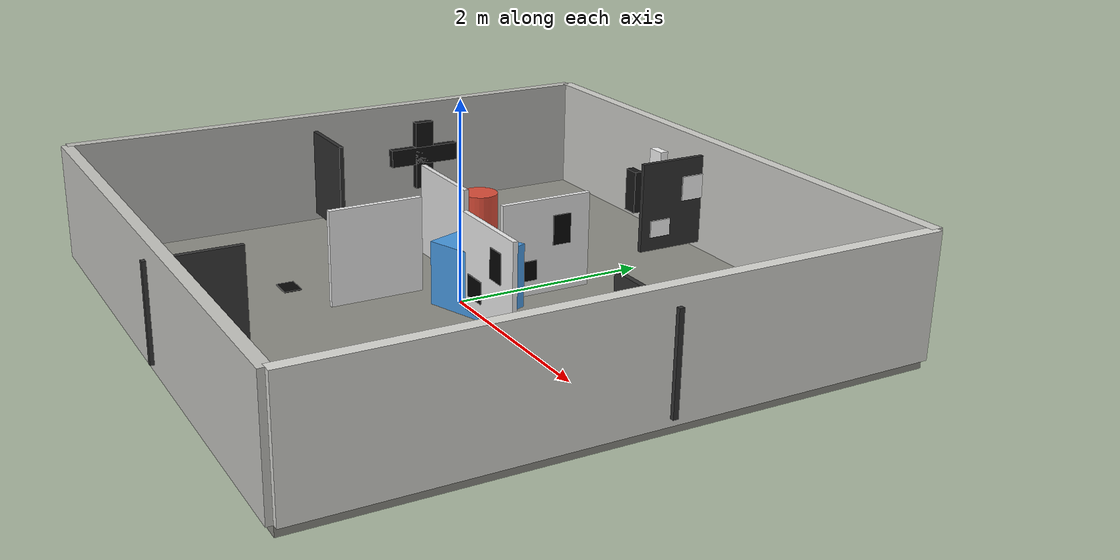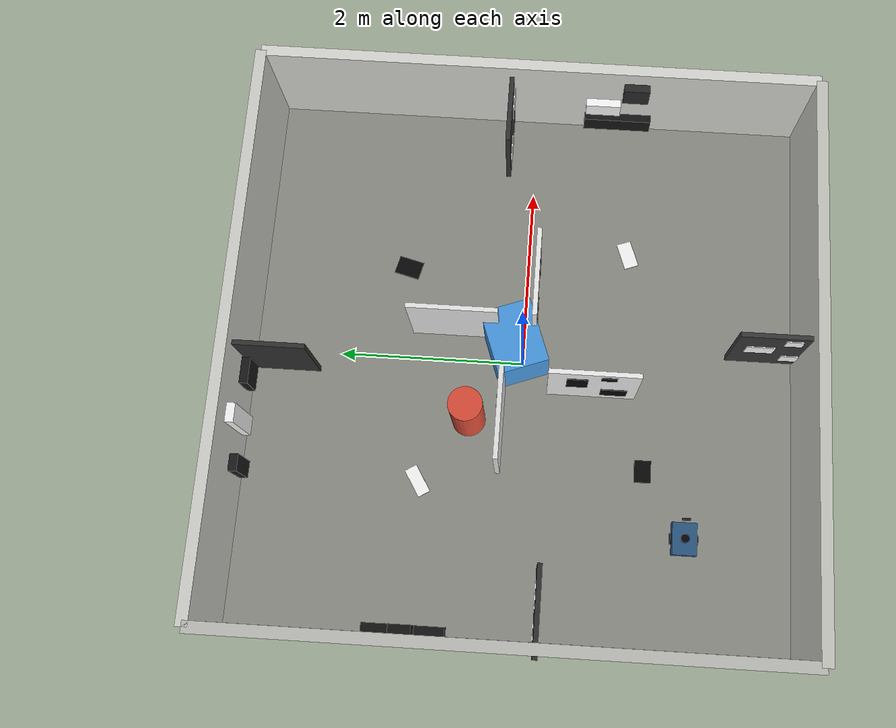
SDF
<?xml version="1.0"?>
<sdf version="1.7">
  <world name="cuvslam_mapping_simple">
    <physics name="5ms" type="ignored">
      <max_step_size>0.005</max_step_size>
      <real_time_factor>1.0</real_time_factor>
    </physics>

    <plugin filename="gz-sim-physics-system" name="gz::sim::systems::Physics"/>
    <plugin filename="gz-sim-user-commands-system" name="gz::sim::systems::UserCommands"/>
    <plugin filename="gz-sim-scene-broadcaster-system" name="gz::sim::systems::SceneBroadcaster"/>
    <plugin filename="gz-sim-sensors-system" name="gz::sim::systems::Sensors">
      <render_engine>ogre2</render_engine>
    </plugin>
    <plugin filename="gz-sim-imu-system" name="gz::sim::systems::Imu"/>

    <light name="ceiling_light" type="point">
      <pose>0 0 4 0 0 0</pose>
      <diffuse>0.95 0.95 0.92 1</diffuse>
      <specular>0.15 0.15 0.15 1</specular>
      <attenuation>
        <range>10</range>
        <constant>0.5</constant>
        <linear>0.02</linear>
        <quadratic>0.001</quadratic>
      </attenuation>
    </light>

    <model name="floor">
      <static>true</static>
      <pose>0 0 -0.05 0 0 0</pose>
      <link name="link">
        <collision name="collision">
          <geometry><box><size>6 6 0.1</size></box></geometry>
        </collision>
        <visual name="visual">
          <geometry><box><size>6 6 0.1</size></box></geometry>
          <material>
            <ambient>0.42 0.42 0.40 1</ambient>
            <diffuse>0.55 0.55 0.52 1</diffuse>
          </material>
        </visual>
      </link>
    </model>

    <model name="north_wall">
      <static>true</static>
      <pose>0 3 0.6 0 0 0</pose>
      <link name="link">
        <collision name="collision"><geometry><box><size>6 0.12 1.2</size></box></geometry></collision>
        <visual name="visual">
          <geometry><box><size>6 0.12 1.2</size></box></geometry>
          <material><ambient>0.72 0.72 0.70 1</ambient><diffuse>0.82 0.82 0.80 1</diffuse></material>
        </visual>
      </link>
    </model>
    <model name="south_wall">
      <static>true</static>
      <pose>0 -3 0.6 0 0 0</pose>
      <link name="link">
        <collision name="collision"><geometry><box><size>6 0.12 1.2</size></box></geometry></collision>
        <visual name="visual">
          <geometry><box><size>6 0.12 1.2</size></box></geometry>
          <material><ambient>0.68 0.68 0.66 1</ambient><diffuse>0.78 0.78 0.76 1</diffuse></material>
        </visual>
      </link>
    </model>
    <model name="east_wall">
      <static>true</static>
      <pose>3 0 0.6 0 0 0</pose>
      <link name="link">
        <collision name="collision"><geometry><box><size>0.12 6 1.2</size></box></geometry></collision>
        <visual name="visual">
          <geometry><box><size>0.12 6 1.2</size></box></geometry>
          <material><ambient>0.76 0.76 0.74 1</ambient><diffuse>0.86 0.86 0.84 1</diffuse></material>
        </visual>
      </link>
    </model>
    <model name="west_wall">
      <static>true</static>
      <pose>-3 0 0.6 0 0 0</pose>
      <link name="link">
        <collision name="collision"><geometry><box><size>0.12 6 1.2</size></box></geometry></collision>
        <visual name="visual">
          <geometry><box><size>0.12 6 1.2</size></box></geometry>
          <material><ambient>0.64 0.64 0.62 1</ambient><diffuse>0.74 0.74 0.72 1</diffuse></material>
        </visual>
      </link>
    </model>

    <!-- Non-symmetric high-contrast landmarks give stereo tracking distinct corners. -->
    <model name="east_landmark_stack">
      <static>true</static>
      <pose>2.90 -0.9 0 0 0 0</pose>
      <link name="link">
        <visual name="lower">
          <pose>0 0 0.22 0 0 0</pose>
          <geometry><box><size>0.10 0.75 0.22</size></box></geometry>
          <material><ambient>0.05 0.05 0.05 1</ambient><diffuse>0.08 0.08 0.08 1</diffuse></material>
        </visual>
        <visual name="middle">
          <pose>0 0.18 0.55 0 0 0</pose>
          <geometry><box><size>0.10 0.38 0.20</size></box></geometry>
          <material><ambient>0.95 0.95 0.95 1</ambient><diffuse>1 1 1 1</diffuse></material>
        </visual>
        <visual name="upper">
          <pose>0 -0.16 0.88 0 0 0</pose>
          <geometry><box><size>0.10 0.28 0.26</size></box></geometry>
          <material><ambient>0.12 0.12 0.12 1</ambient><diffuse>0.16 0.16 0.16 1</diffuse></material>
        </visual>
      </link>
    </model>

    <model name="north_landmark_bars">
      <static>true</static>
      <pose>-0.8 2.90 0 0 0 0</pose>
      <link name="link">
        <visual name="bar_a">
          <pose>-0.55 0 0.32 0 0 0</pose>
          <geometry><box><size>0.18 0.10 0.48</size></box></geometry>
          <material><ambient>0.08 0.08 0.08 1</ambient><diffuse>0.10 0.10 0.10 1</diffuse></material>
        </visual>
        <visual name="bar_b">
          <pose>-0.10 0 0.55 0 0 0</pose>
          <geometry><box><size>0.20 0.10 0.72</size></box></geometry>
          <material><ambient>0.92 0.92 0.92 1</ambient><diffuse>0.98 0.98 0.98 1</diffuse></material>
        </visual>
        <visual name="bar_c">
          <pose>0.42 0 0.40 0 0 0</pose>
          <geometry><box><size>0.28 0.10 0.36</size></box></geometry>
          <material><ambient>0.06 0.06 0.06 1</ambient><diffuse>0.09 0.09 0.09 1</diffuse></material>
        </visual>
      </link>
    </model>

    <model name="west_landmark_cross">
      <static>true</static>
      <pose>-2.90 1.0 0.60 0 0 0</pose>
      <link name="link">
        <visual name="vertical">
          <geometry><box><size>0.10 0.22 0.78</size></box></geometry>
          <material><ambient>0.04 0.04 0.04 1</ambient><diffuse>0.07 0.07 0.07 1</diffuse></material>
        </visual>
        <visual name="horizontal">
          <geometry><box><size>0.10 0.82 0.20</size></box></geometry>
          <material><ambient>0.04 0.04 0.04 1</ambient><diffuse>0.07 0.07 0.07 1</diffuse></material>
        </visual>
      </link>
    </model>

    <model name="center_crate">
      <static>true</static>
      <pose>0.15 0.10 0.32 0 0 0.35</pose>
      <link name="link">
        <collision name="collision"><geometry><box><size>0.70 0.55 0.64</size></box></geometry></collision>
        <visual name="visual">
          <geometry><box><size>0.70 0.55 0.64</size></box></geometry>
          <material><ambient>0.22 0.48 0.72 1</ambient><diffuse>0.28 0.60 0.88 1</diffuse></material>
        </visual>
      </link>
    </model>

    <model name="short_column">
      <static>true</static>
      <pose>-0.65 0.55 0.42 0 0 0</pose>
      <link name="link">
        <collision name="collision"><geometry><cylinder><radius>0.18</radius><length>0.84</length></cylinder></geometry></collision>
        <visual name="visual">
          <geometry><cylinder><radius>0.18</radius><length>0.84</length></cylinder></geometry>
          <material><ambient>0.72 0.24 0.18 1</ambient><diffuse>0.86 0.30 0.22 1</diffuse></material>
        </visual>
      </link>
    </model>

    <!--
      Diagnostic-only near-field features for stereo forward-motion
      observability. They are visual-only and do not change collision geometry.
    -->
    <model name="near_field_observability_boards">
      <static>true</static>
      <link name="link">
        <visual name="left_board">
          <pose>-0.30 -0.75 0.55 0 0 0</pose>
          <geometry><box><size>0.05 0.95 0.95</size></box></geometry>
          <material><ambient>0.88 0.88 0.88 1</ambient><diffuse>0.95 0.95 0.95 1</diffuse></material>
        </visual>
        <visual name="left_black_a">
          <pose>-0.328 -0.98 0.34 0 0 0</pose>
          <geometry><box><size>0.012 0.28 0.24</size></box></geometry>
          <material><ambient>0.02 0.02 0.02 1</ambient><diffuse>0.02 0.02 0.02 1</diffuse></material>
        </visual>
        <visual name="left_black_b">
          <pose>-0.328 -0.58 0.68 0 0 0</pose>
          <geometry><box><size>0.012 0.22 0.32</size></box></geometry>
          <material><ambient>0.02 0.02 0.02 1</ambient><diffuse>0.02 0.02 0.02 1</diffuse></material>
        </visual>
        <visual name="left_black_c">
          <pose>-0.328 -0.90 0.90 0 0 0</pose>
          <geometry><box><size>0.012 0.16 0.12</size></box></geometry>
          <material><ambient>0.02 0.02 0.02 1</ambient><diffuse>0.02 0.02 0.02 1</diffuse></material>
        </visual>

        <visual name="right_board">
          <pose>0.20 -2.65 0.55 0 0 0</pose>
          <geometry><box><size>0.05 0.90 0.95</size></box></geometry>
          <material><ambient>0.18 0.18 0.18 1</ambient><diffuse>0.22 0.22 0.22 1</diffuse></material>
        </visual>
        <visual name="right_white_a">
          <pose>0.172 -2.87 0.30 0 0 0</pose>
          <geometry><box><size>0.012 0.24 0.18</size></box></geometry>
          <material><ambient>0.98 0.98 0.98 1</ambient><diffuse>1 1 1 1</diffuse></material>
        </visual>
        <visual name="right_white_b">
          <pose>0.172 -2.48 0.58 0 0 0</pose>
          <geometry><box><size>0.012 0.30 0.20</size></box></geometry>
          <material><ambient>0.98 0.98 0.98 1</ambient><diffuse>1 1 1 1</diffuse></material>
        </visual>
        <visual name="right_white_c">
          <pose>0.172 -2.78 0.86 0 0 0</pose>
          <geometry><box><size>0.012 0.18 0.16</size></box></geometry>
          <material><ambient>0.98 0.98 0.98 1</ambient><diffuse>1 1 1 1</diffuse></material>
        </visual>

        <!-- Northbound leg: boards face -Y. -->
        <visual name="north_inner_board">
          <pose>0.75 -0.10 0.55 0 0 0</pose>
          <geometry><box><size>0.95 0.05 0.95</size></box></geometry>
          <material><ambient>0.86 0.86 0.86 1</ambient><diffuse>0.94 0.94 0.94 1</diffuse></material>
        </visual>
        <visual name="north_inner_black_a">
          <pose>0.52 -0.128 0.34 0 0 0</pose>
          <geometry><box><size>0.26 0.012 0.22</size></box></geometry>
          <material><ambient>0.02 0.02 0.02 1</ambient><diffuse>0.02 0.02 0.02 1</diffuse></material>
        </visual>
        <visual name="north_inner_black_b">
          <pose>0.92 -0.128 0.70 0 0 0</pose>
          <geometry><box><size>0.20 0.012 0.30</size></box></geometry>
          <material><ambient>0.02 0.02 0.02 1</ambient><diffuse>0.02 0.02 0.02 1</diffuse></material>
        </visual>
        <visual name="north_outer_board">
          <pose>2.65 0.30 0.55 0 0 0</pose>
          <geometry><box><size>0.90 0.05 0.95</size></box></geometry>
          <material><ambient>0.16 0.16 0.16 1</ambient><diffuse>0.20 0.20 0.20 1</diffuse></material>
        </visual>
        <visual name="north_outer_white_a">
          <pose>2.43 0.272 0.32 0 0 0</pose>
          <geometry><box><size>0.24 0.012 0.18</size></box></geometry>
          <material><ambient>0.98 0.98 0.98 1</ambient><diffuse>1 1 1 1</diffuse></material>
        </visual>
        <visual name="north_outer_white_b">
          <pose>2.82 0.272 0.67 0 0 0</pose>
          <geometry><box><size>0.28 0.012 0.24</size></box></geometry>
          <material><ambient>0.98 0.98 0.98 1</ambient><diffuse>1 1 1 1</diffuse></material>
        </visual>

        <!-- Westbound leg: boards face +X. -->
        <visual name="west_inner_board">
          <pose>0.30 0.75 0.55 0 0 0</pose>
          <geometry><box><size>0.05 0.95 0.95</size></box></geometry>
          <material><ambient>0.84 0.84 0.84 1</ambient><diffuse>0.92 0.92 0.92 1</diffuse></material>
        </visual>
        <visual name="west_inner_black_a">
          <pose>0.328 0.52 0.33 0 0 0</pose>
          <geometry><box><size>0.012 0.25 0.20</size></box></geometry>
          <material><ambient>0.02 0.02 0.02 1</ambient><diffuse>0.02 0.02 0.02 1</diffuse></material>
        </visual>
        <visual name="west_inner_black_b">
          <pose>0.328 0.92 0.70 0 0 0</pose>
          <geometry><box><size>0.012 0.19 0.30</size></box></geometry>
          <material><ambient>0.02 0.02 0.02 1</ambient><diffuse>0.02 0.02 0.02 1</diffuse></material>
        </visual>
        <visual name="west_outer_board">
          <pose>-0.20 2.65 0.55 0 0 0</pose>
          <geometry><box><size>0.05 0.90 0.95</size></box></geometry>
          <material><ambient>0.15 0.15 0.15 1</ambient><diffuse>0.19 0.19 0.19 1</diffuse></material>
        </visual>
        <visual name="west_outer_white_a">
          <pose>-0.172 2.43 0.31 0 0 0</pose>
          <geometry><box><size>0.012 0.24 0.18</size></box></geometry>
          <material><ambient>0.98 0.98 0.98 1</ambient><diffuse>1 1 1 1</diffuse></material>
        </visual>
        <visual name="west_outer_white_b">
          <pose>-0.172 2.82 0.70 0 0 0</pose>
          <geometry><box><size>0.012 0.26 0.26</size></box></geometry>
          <material><ambient>0.98 0.98 0.98 1</ambient><diffuse>1 1 1 1</diffuse></material>
        </visual>

        <!-- Southbound leg: boards face +Y. -->
        <visual name="south_inner_board">
          <pose>-0.75 0.20 0.55 0 0 0</pose>
          <geometry><box><size>0.95 0.05 0.95</size></box></geometry>
          <material><ambient>0.82 0.82 0.82 1</ambient><diffuse>0.90 0.90 0.90 1</diffuse></material>
        </visual>
        <visual name="south_inner_black_a">
          <pose>-0.98 0.228 0.35 0 0 0</pose>
          <geometry><box><size>0.27 0.012 0.22</size></box></geometry>
          <material><ambient>0.02 0.02 0.02 1</ambient><diffuse>0.02 0.02 0.02 1</diffuse></material>
        </visual>
        <visual name="south_inner_black_b">
          <pose>-0.58 0.228 0.72 0 0 0</pose>
          <geometry><box><size>0.20 0.012 0.28</size></box></geometry>
          <material><ambient>0.02 0.02 0.02 1</ambient><diffuse>0.02 0.02 0.02 1</diffuse></material>
        </visual>
        <visual name="south_outer_board">
          <pose>-2.65 -0.30 0.55 0 0 0</pose>
          <geometry><box><size>0.90 0.05 0.95</size></box></geometry>
          <material><ambient>0.14 0.14 0.14 1</ambient><diffuse>0.18 0.18 0.18 1</diffuse></material>
        </visual>
        <visual name="south_outer_white_a">
          <pose>-2.87 -0.272 0.30 0 0 0</pose>
          <geometry><box><size>0.23 0.012 0.17</size></box></geometry>
          <material><ambient>0.98 0.98 0.98 1</ambient><diffuse>1 1 1 1</diffuse></material>
        </visual>
        <visual name="south_outer_white_b">
          <pose>-2.48 -0.272 0.68 0 0 0</pose>
          <geometry><box><size>0.29 0.012 0.25</size></box></geometry>
          <material><ambient>0.98 0.98 0.98 1</ambient><diffuse>1 1 1 1</diffuse></material>
        </visual>

        <!-- Floor markers add depth variation without affecting collision. -->
        <visual name="floor_marker_a">
          <pose>-1.10 -1.35 0.008 0 0 0</pose>
          <geometry><box><size>0.24 0.18 0.012</size></box></geometry>
          <material><ambient>0.03 0.03 0.03 1</ambient><diffuse>0.03 0.03 0.03 1</diffuse></material>
        </visual>
        <visual name="floor_marker_b">
          <pose>1.35 -1.10 0.008 0 0 0.35</pose>
          <geometry><box><size>0.30 0.16 0.012</size></box></geometry>
          <material><ambient>0.94 0.94 0.94 1</ambient><diffuse>0.98 0.98 0.98 1</diffuse></material>
        </visual>
        <visual name="floor_marker_c">
          <pose>1.05 1.35 0.008 0 0 -0.25</pose>
          <geometry><box><size>0.20 0.28 0.012</size></box></geometry>
          <material><ambient>0.03 0.03 0.03 1</ambient><diffuse>0.03 0.03 0.03 1</diffuse></material>
        </visual>
        <visual name="floor_marker_d">
          <pose>-1.35 1.05 0.008 0 0 0.55</pose>
          <geometry><box><size>0.32 0.14 0.012</size></box></geometry>
          <material><ambient>0.94 0.94 0.94 1</ambient><diffuse>0.98 0.98 0.98 1</diffuse></material>
        </visual>
      </link>
    </model>

    <model name="slam_bot">
      <pose>-1.8 -1.8 0.06 0 0 0</pose>

      <link name="base_link">
        <inertial>
          <pose>-0.01 0 0 0 0 0</pose>
          <mass>8.0</mass>
          <inertia><ixx>0.05</ixx><ixy>0</ixy><ixz>0</ixz><iyy>0.07</iyy><iyz>0</iyz><izz>0.08</izz></inertia>
        </inertial>
        <collision name="collision">
          <pose>0 0 0.04 0 0 0</pose>
          <geometry><box><size>0.34 0.26 0.12</size></box></geometry>
        </collision>
        <visual name="visual">
          <pose>0 0 0.04 0 0 0</pose>
          <geometry><box><size>0.34 0.26 0.12</size></box></geometry>
          <material><ambient>0.12 0.26 0.38 1</ambient><diffuse>0.16 0.34 0.50 1</diffuse></material>
        </visual>
      </link>

      <link name="left_wheel">
        <pose>0 0.13 0 1.57079632679 0 0</pose>
        <inertial>
          <mass>0.35</mass>
          <inertia><ixx>0.0007</ixx><ixy>0</ixy><ixz>0</ixz><iyy>0.0007</iyy><iyz>0</iyz><izz>0.0012</izz></inertia>
        </inertial>
        <collision name="collision"><geometry><cylinder><radius>0.06</radius><length>0.035</length></cylinder></geometry></collision>
        <visual name="visual">
          <geometry><cylinder><radius>0.06</radius><length>0.035</length></cylinder></geometry>
          <material><ambient>0.04 0.04 0.04 1</ambient><diffuse>0.04 0.04 0.04 1</diffuse></material>
        </visual>
      </link>

      <link name="right_wheel">
        <pose>0 -0.13 0 1.57079632679 0 0</pose>
        <inertial>
          <mass>0.35</mass>
          <inertia><ixx>0.0007</ixx><ixy>0</ixy><ixz>0</ixz><iyy>0.0007</iyy><iyz>0</iyz><izz>0.0012</izz></inertia>
        </inertial>
        <collision name="collision"><geometry><cylinder><radius>0.06</radius><length>0.035</length></cylinder></geometry></collision>
        <visual name="visual">
          <geometry><cylinder><radius>0.06</radius><length>0.035</length></cylinder></geometry>
          <material><ambient>0.04 0.04 0.04 1</ambient><diffuse>0.04 0.04 0.04 1</diffuse></material>
        </visual>
      </link>

      <link name="caster">
        <pose>-0.13 0 -0.035 0 0 0</pose>
        <inertial>
          <mass>0.1</mass>
          <inertia><ixx>0.0001</ixx><ixy>0</ixy><ixz>0</ixz><iyy>0.0001</iyy><iyz>0</iyz><izz>0.0001</izz></inertia>
        </inertial>
        <collision name="collision"><geometry><sphere><radius>0.025</radius></sphere></geometry></collision>
        <visual name="visual"><geometry><sphere><radius>0.025</radius></sphere></geometry></visual>
      </link>

      <link name="laser_frame">
        <pose>0 0 0.13 0 0 0</pose>
        <inertial>
          <mass>0.15</mass>
          <inertia><ixx>0.0002</ixx><ixy>0</ixy><ixz>0</ixz><iyy>0.0002</iyy><iyz>0</iyz><izz>0.0002</izz></inertia>
        </inertial>
        <collision name="collision"><geometry><cylinder><radius>0.045</radius><length>0.035</length></cylinder></geometry></collision>
        <visual name="visual">
          <geometry><cylinder><radius>0.045</radius><length>0.035</length></cylinder></geometry>
          <material><ambient>0.02 0.02 0.025 1</ambient><diffuse>0.02 0.02 0.025 1</diffuse></material>
        </visual>
        <sensor name="lidar" type="gpu_lidar">
          <topic>/scan</topic>
          <update_rate>10</update_rate>
          <ray>
            <scan>
              <horizontal>
                <samples>720</samples>
                <resolution>1</resolution>
                <min_angle>-3.14159265359</min_angle>
                <max_angle>3.14159265359</max_angle>
              </horizontal>
            </scan>
            <range>
              <min>0.10</min>
              <max>10.0</max>
              <resolution>0.01</resolution>
            </range>
            <noise>
              <type>gaussian</type>
              <mean>0.0</mean>
              <stddev>0.005</stddev>
            </noise>
          </ray>
          <visualize>true</visualize>
        </sensor>
      </link>

      <link name="camera_link">
        <pose>0.19 0 0.20 0 0 0</pose>
        <inertial>
          <mass>0.072</mass>
          <inertia><ixx>0.00006</ixx><ixy>0</ixy><ixz>0</ixz><iyy>0.00002</iyy><iyz>0</iyz><izz>0.00006</izz></inertia>
        </inertial>
        <visual name="visual">
          <geometry><box><size>0.025 0.09 0.025</size></box></geometry>
          <material><ambient>0.08 0.08 0.08 1</ambient><diffuse>0.12 0.12 0.12 1</diffuse></material>
        </visual>
      </link>

      <link name="camera_infra1_frame">
        <pose>0.19 0.025 0.20 0 0 0</pose>
        <inertial>
          <mass>0.001</mass>
          <inertia><ixx>1e-7</ixx><ixy>0</ixy><ixz>0</ixz><iyy>1e-7</iyy><iyz>0</iyz><izz>1e-7</izz></inertia>
        </inertial>
        <sensor name="d435i_infra1" type="camera">
          <always_on>true</always_on>
          <update_rate>30</update_rate>
          <topic>/d435i/infra1/image_rect_raw</topic>
          <camera>
            <camera_info_topic>/d435i/infra1/camera_info</camera_info_topic>
            <optical_frame_id>camera_infra1_optical_frame</optical_frame_id>
            <horizontal_fov>1.58825</horizontal_fov>
            <image>
              <width>424</width>
              <height>240</height>
              <format>L8</format>
            </image>
            <clip><near>0.10</near><far>20.0</far></clip>
          </camera>
        </sensor>
      </link>

      <link name="camera_infra2_frame">
        <pose>0.19 -0.025 0.20 0 0 0</pose>
        <inertial>
          <mass>0.001</mass>
          <inertia><ixx>1e-7</ixx><ixy>0</ixy><ixz>0</ixz><iyy>1e-7</iyy><iyz>0</iyz><izz>1e-7</izz></inertia>
        </inertial>
        <sensor name="d435i_infra2" type="camera">
          <always_on>true</always_on>
          <update_rate>30</update_rate>
          <topic>/d435i/infra2/image_rect_raw</topic>
          <camera>
            <camera_info_topic>/d435i/infra2/camera_info</camera_info_topic>
            <optical_frame_id>camera_infra2_optical_frame</optical_frame_id>
            <horizontal_fov>1.58825</horizontal_fov>
            <image>
              <width>424</width>
              <height>240</height>
              <format>L8</format>
            </image>
            <clip><near>0.10</near><far>20.0</far></clip>
          </camera>
        </sensor>
      </link>

      <link name="camera_imu_frame">
        <pose>0.19 0 0.20 0 0 0</pose>
        <inertial>
          <mass>0.001</mass>
          <inertia><ixx>1e-7</ixx><ixy>0</ixy><ixz>0</ixz><iyy>1e-7</iyy><iyz>0</iyz><izz>1e-7</izz></inertia>
        </inertial>
        <sensor name="d435i_imu" type="imu">
          <always_on>true</always_on>
          <update_rate>200</update_rate>
          <topic>/d435i/imu</topic>
        </sensor>
      </link>

      <joint name="left_wheel_joint" type="revolute">
        <parent>base_link</parent>
        <child>left_wheel</child>
        <axis>
          <xyz expressed_in="__model__">0 1 0</xyz>
          <limit><lower>-1e16</lower><upper>1e16</upper></limit>
        </axis>
      </joint>
      <joint name="right_wheel_joint" type="revolute">
        <parent>base_link</parent>
        <child>right_wheel</child>
        <axis>
          <xyz expressed_in="__model__">0 1 0</xyz>
          <limit><lower>-1e16</lower><upper>1e16</upper></limit>
        </axis>
      </joint>
      <joint name="caster_joint" type="fixed">
        <parent>base_link</parent>
        <child>caster</child>
      </joint>
      <joint name="laser_joint" type="fixed">
        <parent>base_link</parent>
        <child>laser_frame</child>
      </joint>
      <joint name="camera_joint" type="fixed">
        <parent>base_link</parent>
        <child>camera_link</child>
      </joint>
      <joint name="camera_infra1_joint" type="fixed">
        <parent>camera_link</parent>
        <child>camera_infra1_frame</child>
      </joint>
      <joint name="camera_infra2_joint" type="fixed">
        <parent>camera_link</parent>
        <child>camera_infra2_frame</child>
      </joint>
      <joint name="camera_imu_joint" type="fixed">
        <parent>camera_link</parent>
        <child>camera_imu_frame</child>
      </joint>

      <plugin filename="gz-sim-diff-drive-system" name="gz::sim::systems::DiffDrive">
        <left_joint>left_wheel_joint</left_joint>
        <right_joint>right_wheel_joint</right_joint>
        <wheel_separation>0.23</wheel_separation>
        <wheel_radius>0.06</wheel_radius>
        <odom_publish_frequency>20</odom_publish_frequency>
        <max_linear_acceleration>1.0</max_linear_acceleration>
        <min_linear_acceleration>-1.0</min_linear_acceleration>
        <max_angular_acceleration>2.0</max_angular_acceleration>
        <min_angular_acceleration>-2.0</min_angular_acceleration>
        <max_linear_velocity>0.5</max_linear_velocity>
        <min_linear_velocity>-0.5</min_linear_velocity>
        <max_angular_velocity>1.2</max_angular_velocity>
        <min_angular_velocity>-1.2</min_angular_velocity>
      </plugin>
    </model>
  </world>
</sdf>
